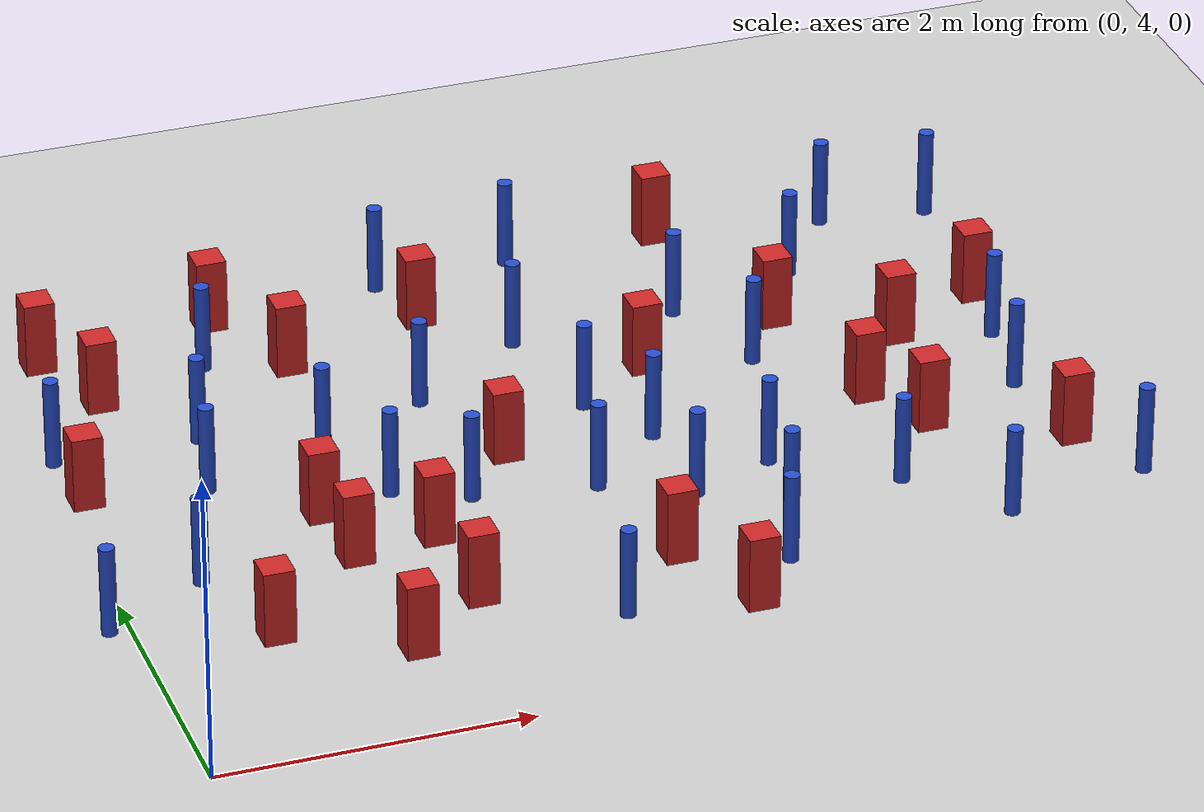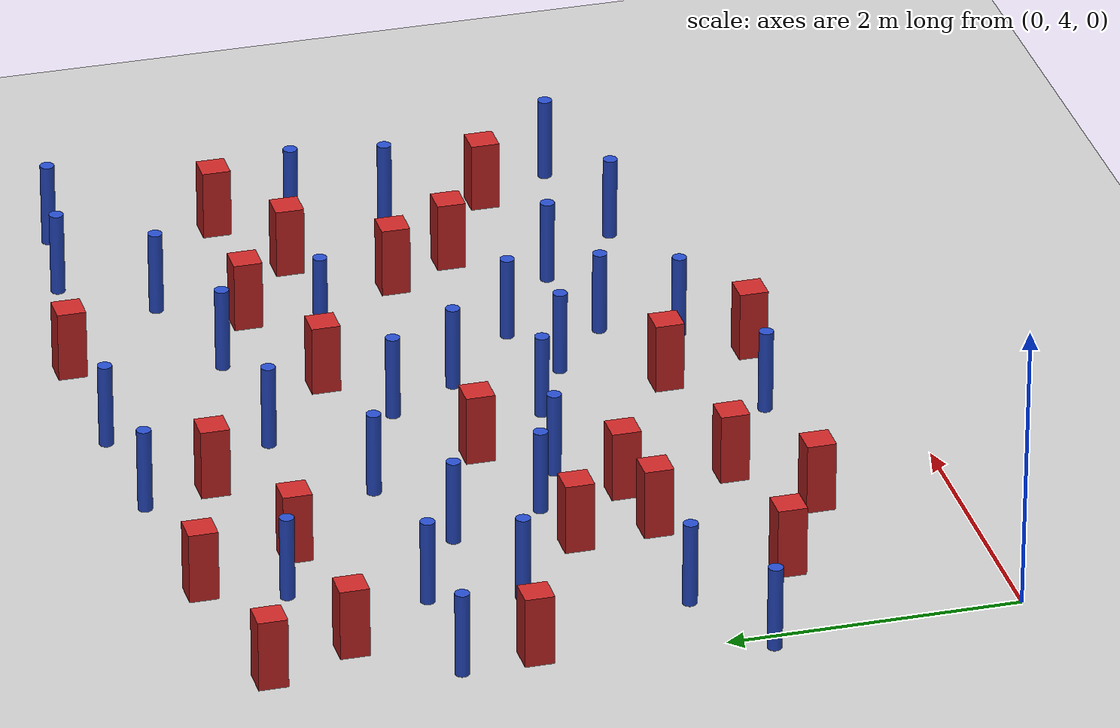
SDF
<sdf version="1.6">
 <world name="default">
  <model name="ground_plane">
   <static>1</static>
   <link name="link">
    <collision name="collision">
     <geometry><plane><normal>0 0 1</normal><size>100 100</size></plane></geometry>
     <surface><friction><ode><mu>100</mu><mu2>50</mu2></ode></friction></surface>
    </collision>
    <visual name="visual">
     <cast_shadows>0</cast_shadows>
     <geometry><plane><normal>0 0 1</normal><size>100 100</size></plane></geometry>
     <material>
      <ambient>1.0 1.0 1.0 1.0</ambient>
      <diffuse>0.8 0.8 0.8 1.0</diffuse>
      <specular>0.01 0.01 0.01 1.000000</specular>
     </material>
    </visual>
   </link>
  </model>
  <model name="pole_obstacle9">
   <static>true</static>
   <pose>6.43883494584 9.03935850446 7.38925637345e-09 -8.471706928e-08 1.24976765081e-08 -1.74513093015e-07</pose>
   <link name="link">
    <pose>0 0 0.3 0 -0 0</pose>
    <inertial>
     <mass>1</mass>
     <inertia><ixx>0.145833</ixx><ixy>0</ixy><ixz>0</ixz><iyy>0.145833</iyy><iyz>0</iyz><izz>0.125</izz></inertia>
    </inertial>
    <collision name="collision">
     <geometry><cylinder><radius>0.05</radius><length>.6</length></cylinder></geometry>
    </collision>
    <visual name="visual">
     <geometry><cylinder><radius>0.05</radius><length>.6</length></cylinder></geometry>
     <material>
      <script><name>Gazebo/Blue</name><uri>file://media/materials/scripts/gazebo.material</uri></script>
     </material>
    </visual>
   </link>
  </model>
  <model name="square_post_obstacle13">
   <static>true</static>
   <pose>0.308547579843 8.96091731637 1.91545236811e-07 -7.35059704564e-06 1.12565212e-07 2.39332434364e-05</pose>
   <link name="link">
    <pose>0 0 0.25 0 -0 0</pose>
    <inertial>
     <mass>100</mass>
     <inertia>
      <ixx>0.166667</ixx>
      <ixy>0</ixy>
      <ixz>0</ixz>
      <iyy>0.166667</iyy>
      <iyz>0</iyz>
      <izz>0.166667</izz>
     </inertia>
    </inertial>
    <collision name="collision"><geometry><box><size>.2 .2 .5</size></box></geometry></collision>
    <visual name="visual">
     <geometry><box><size>.2 .2 .5</size></box></geometry>
     <material>
      <script><name>Gazebo/Red</name><uri>file://media/materials/scripts/gazebo.material</uri></script>
     </material>
    </visual>
   </link>
  </model>
  <model name="pole_obstacle28">
   <static>true</static>
   <pose>1.01745465262 7.73019974511 7.38925637345e-09 -8.47170692799e-08 1.24976765021e-08 -1.74513093019e-07</pose>
   <link name="link">
    <pose>0 0 0.3 0 -0 0</pose>
    <inertial>
     <mass>1</mass>
     <inertia><ixx>0.145833</ixx><ixy>0</ixy><ixz>0</ixz><iyy>0.145833</iyy><iyz>0</iyz><izz>0.125</izz></inertia>
    </inertial>
    <collision name="collision">
     <geometry><cylinder><radius>0.05</radius><length>.6</length></cylinder></geometry>
    </collision>
    <visual name="visual">
     <geometry><cylinder><radius>0.05</radius><length>.6</length></cylinder></geometry>
     <material>
      <script><name>Gazebo/Blue</name><uri>file://media/materials/scripts/gazebo.material</uri></script>
     </material>
    </visual>
   </link>
  </model>
  <model name="pole_obstacle33">
   <static>true</static>
   <pose>4.38627192349 8.28959876995 7.38925637345e-09 -8.471706928e-08 1.24976765081e-08 -1.74513093015e-07</pose>
   <link name="link">
    <pose>0 0 0.3 0 -0 0</pose>
    <inertial>
     <mass>1</mass>
     <inertia><ixx>0.145833</ixx><ixy>0</ixy><ixz>0</ixz><iyy>0.145833</iyy><iyz>0</iyz><izz>0.125</izz></inertia>
    </inertial>
    <collision name="collision">
     <geometry><cylinder><radius>0.05</radius><length>.6</length></cylinder></geometry>
    </collision>
    <visual name="visual">
     <geometry><cylinder><radius>0.05</radius><length>.6</length></cylinder></geometry>
     <material>
      <script><name>Gazebo/Blue</name><uri>file://media/materials/scripts/gazebo.material</uri></script>
     </material>
    </visual>
   </link>
  </model>
  <model name="square_post_obstacle35">
   <static>true</static>
   <pose>3.38666781271 5.44627114641 1.91545236811e-07 -7.35059704564e-06 1.12565212e-07 2.39332434364e-05</pose>
   <link name="link">
    <pose>0 0 0.25 0 -0 0</pose>
    <inertial>
     <mass>100</mass>
     <inertia>
      <ixx>0.166667</ixx>
      <ixy>0</ixy>
      <ixz>0</ixz>
      <iyy>0.166667</iyy>
      <iyz>0</iyz>
      <izz>0.166667</izz>
     </inertia>
    </inertial>
    <collision name="collision"><geometry><box><size>.2 .2 .5</size></box></geometry></collision>
    <visual name="visual">
     <geometry><box><size>.2 .2 .5</size></box></geometry>
     <material>
      <script><name>Gazebo/Red</name><uri>file://media/materials/scripts/gazebo.material</uri></script>
     </material>
    </visual>
   </link>
  </model>
  <model name="pole_obstacle47">
   <static>true</static>
   <pose>-0.129529236448 5.71778781946 7.38925637345e-09 -8.47170692799e-08 1.24976765043e-08 -1.74513093019e-07</pose>
   <link name="link">
    <pose>0 0 0.3 0 -0 0</pose>
    <inertial>
     <mass>1</mass>
     <inertia><ixx>0.145833</ixx><ixy>0</ixy><ixz>0</ixz><iyy>0.145833</iyy><iyz>0</iyz><izz>0.125</izz></inertia>
    </inertial>
    <collision name="collision">
     <geometry><cylinder><radius>0.05</radius><length>.6</length></cylinder></geometry>
    </collision>
    <visual name="visual">
     <geometry><cylinder><radius>0.05</radius><length>.6</length></cylinder></geometry>
     <material>
      <script><name>Gazebo/Blue</name><uri>file://media/materials/scripts/gazebo.material</uri></script>
     </material>
    </visual>
   </link>
  </model>
  <model name="square_post_obstacle38">
   <static>true</static>
   <pose>1.8155594871 8.42395148105 1.91545236811e-07 -7.35059704564e-06 1.12565212e-07 2.39332434364e-05</pose>
   <link name="link">
    <pose>0 0 0.25 0 -0 0</pose>
    <inertial>
     <mass>100</mass>
     <inertia>
      <ixx>0.166667</ixx>
      <ixy>0</ixy>
      <ixz>0</ixz>
      <iyy>0.166667</iyy>
      <iyz>0</iyz>
      <izz>0.166667</izz>
     </inertia>
    </inertial>
    <collision name="collision"><geometry><box><size>.2 .2 .5</size></box></geometry></collision>
    <visual name="visual">
     <geometry><box><size>.2 .2 .5</size></box></geometry>
     <material>
      <script><name>Gazebo/Red</name><uri>file://media/materials/scripts/gazebo.material</uri></script>
     </material>
    </visual>
   </link>
  </model>
  <model name="pole_obstacle56">
   <static>true</static>
   <pose>3.44344472262 7.33857064177 7.38925637345e-09 -8.47170692798e-08 1.24976765033e-08 -1.74513093019e-07</pose>
   <link name="link">
    <pose>0 0 0.3 0 -0 0</pose>
    <inertial>
     <mass>1</mass>
     <inertia><ixx>0.145833</ixx><ixy>0</ixy><ixz>0</ixz><iyy>0.145833</iyy><iyz>0</iyz><izz>0.125</izz></inertia>
    </inertial>
    <collision name="collision">
     <geometry><cylinder><radius>0.05</radius><length>.6</length></cylinder></geometry>
    </collision>
    <visual name="visual">
     <geometry><cylinder><radius>0.05</radius><length>.6</length></cylinder></geometry>
     <material>
      <script><name>Gazebo/Blue</name><uri>file://media/materials/scripts/gazebo.material</uri></script>
     </material>
    </visual>
   </link>
  </model>
  <model name="pole_obstacle57">
   <static>true</static>
   <pose>3.27122801807 8.23968151039 7.38925637345e-09 -8.47170692793e-08 1.24976764408e-08 -1.74513093041e-07</pose>
   <link name="link">
    <pose>0 0 0.3 0 -0 0</pose>
    <inertial>
     <mass>1</mass>
     <inertia><ixx>0.145833</ixx><ixy>0</ixy><ixz>0</ixz><iyy>0.145833</iyy><iyz>0</iyz><izz>0.125</izz></inertia>
    </inertial>
    <collision name="collision">
     <geometry><cylinder><radius>0.05</radius><length>.6</length></cylinder></geometry>
    </collision>
    <visual name="visual">
     <geometry><cylinder><radius>0.05</radius><length>.6</length></cylinder></geometry>
     <material>
      <script><name>Gazebo/Blue</name><uri>file://media/materials/scripts/gazebo.material</uri></script>
     </material>
    </visual>
   </link>
  </model>
  <model name="pole_obstacle58">
   <static>true</static>
   <pose>3.57361111671 9.28716800198 7.38925637345e-09 -8.47170692793e-08 1.24976764408e-08 -1.74513093041e-07</pose>
   <link name="link">
    <pose>0 0 0.3 0 -0 0</pose>
    <inertial>
     <mass>1</mass>
     <inertia><ixx>0.145833</ixx><ixy>0</ixy><ixz>0</ixz><iyy>0.145833</iyy><iyz>0</iyz><izz>0.125</izz></inertia>
    </inertial>
    <collision name="collision">
     <geometry><cylinder><radius>0.05</radius><length>.6</length></cylinder></geometry>
    </collision>
    <visual name="visual">
     <geometry><cylinder><radius>0.05</radius><length>.6</length></cylinder></geometry>
     <material>
      <script><name>Gazebo/Blue</name><uri>file://media/materials/scripts/gazebo.material</uri></script>
     </material>
    </visual>
   </link>
  </model>
  <model name="pole_obstacle60">
   <static>true</static>
   <pose>2.66086202297 9.23289298458 7.38925637345e-09 -8.47170692793e-08 1.24976764408e-08 -1.74513093041e-07</pose>
   <link name="link">
    <pose>0 0 0.3 0 -0 0</pose>
    <inertial>
     <mass>1</mass>
     <inertia><ixx>0.145833</ixx><ixy>0</ixy><ixz>0</ixz><iyy>0.145833</iyy><iyz>0</iyz><izz>0.125</izz></inertia>
    </inertial>
    <collision name="collision">
     <geometry><cylinder><radius>0.05</radius><length>.6</length></cylinder></geometry>
    </collision>
    <visual name="visual">
     <geometry><cylinder><radius>0.05</radius><length>.6</length></cylinder></geometry>
     <material>
      <script><name>Gazebo/Blue</name><uri>file://media/materials/scripts/gazebo.material</uri></script>
     </material>
    </visual>
   </link>
  </model>
  <model name="square_post_obstacle48">
   <static>true</static>
   <pose>5.42436424604 6.43318882685 1.91545236811e-07 -7.35059704564e-06 1.12565212e-07 2.39332434364e-05</pose>
   <link name="link">
    <pose>0 0 0.25 0 -0 0</pose>
    <inertial>
     <mass>100</mass>
     <inertia>
      <ixx>0.166667</ixx>
      <ixy>0</ixy>
      <ixz>0</ixz>
      <iyy>0.166667</iyy>
      <iyz>0</iyz>
      <izz>0.166667</izz>
     </inertia>
    </inertial>
    <collision name="collision"><geometry><box><size>.2 .2 .5</size></box></geometry></collision>
    <visual name="visual">
     <geometry><box><size>.2 .2 .5</size></box></geometry>
     <material>
      <script><name>Gazebo/Red</name><uri>file://media/materials/scripts/gazebo.material</uri></script>
     </material>
    </visual>
   </link>
  </model>
  <model name="pole_obstacle66">
   <static>true</static>
   <pose>5.28277343739 8.54254350757 7.38925637345e-09 -8.471706928e-08 1.24976765081e-08 -1.74513093015e-07</pose>
   <link name="link">
    <pose>0 0 0.3 0 -0 0</pose>
    <inertial>
     <mass>1</mass>
     <inertia><ixx>0.145833</ixx><ixy>0</ixy><ixz>0</ixz><iyy>0.145833</iyy><iyz>0</iyz><izz>0.125</izz></inertia>
    </inertial>
    <collision name="collision">
     <geometry><cylinder><radius>0.05</radius><length>.6</length></cylinder></geometry>
    </collision>
    <visual name="visual">
     <geometry><cylinder><radius>0.05</radius><length>.6</length></cylinder></geometry>
     <material>
      <script><name>Gazebo/Blue</name><uri>file://media/materials/scripts/gazebo.material</uri></script>
     </material>
    </visual>
   </link>
  </model>
  <model name="pole_obstacle68">
   <static>true</static>
   <pose>6.48093558159 5.45163694313 7.38925637345e-09 -8.47170692796e-08 1.24976764786e-08 -1.74513093032e-07</pose>
   <link name="link">
    <pose>0 0 0.3 0 -0 0</pose>
    <inertial>
     <mass>1</mass>
     <inertia><ixx>0.145833</ixx><ixy>0</ixy><ixz>0</ixz><iyy>0.145833</iyy><iyz>0</iyz><izz>0.125</izz></inertia>
    </inertial>
    <collision name="collision">
     <geometry><cylinder><radius>0.05</radius><length>.6</length></cylinder></geometry>
    </collision>
    <visual name="visual">
     <geometry><cylinder><radius>0.05</radius><length>.6</length></cylinder></geometry>
     <material>
      <script><name>Gazebo/Blue</name><uri>file://media/materials/scripts/gazebo.material</uri></script>
     </material>
    </visual>
   </link>
  </model>
  <model name="pole_obstacle72">
   <static>true</static>
   <pose>1.95988558031 6.71472503706 7.38925637345e-09 -8.471706928e-08 1.24976765202e-08 -1.7451309301e-07</pose>
   <link name="link">
    <pose>0 0 0.3 0 -0 0</pose>
    <inertial>
     <mass>1</mass>
     <inertia><ixx>0.145833</ixx><ixy>0</ixy><ixz>0</ixz><iyy>0.145833</iyy><iyz>0</iyz><izz>0.125</izz></inertia>
    </inertial>
    <collision name="collision">
     <geometry><cylinder><radius>0.05</radius><length>.6</length></cylinder></geometry>
    </collision>
    <visual name="visual">
     <geometry><cylinder><radius>0.05</radius><length>.6</length></cylinder></geometry>
     <material>
      <script><name>Gazebo/Blue</name><uri>file://media/materials/scripts/gazebo.material</uri></script>
     </material>
    </visual>
   </link>
  </model>
  <model name="square_post_obstacle67">
   <static>true</static>
   <pose>1.46859394641 6.60679710805 1.91545236811e-07 -7.35059704564e-06 1.12565212e-07 2.39332434364e-05</pose>
   <link name="link">
    <pose>0 0 0.25 0 -0 0</pose>
    <inertial>
     <mass>100</mass>
     <inertia>
      <ixx>0.166667</ixx>
      <ixy>0</ixy>
      <ixz>0</ixz>
      <iyy>0.166667</iyy>
      <iyz>0</iyz>
      <izz>0.166667</izz>
     </inertia>
    </inertial>
    <collision name="collision"><geometry><box><size>.2 .2 .5</size></box></geometry></collision>
    <visual name="visual">
     <geometry><box><size>.2 .2 .5</size></box></geometry>
     <material>
      <script><name>Gazebo/Red</name><uri>file://media/materials/scripts/gazebo.material</uri></script>
     </material>
    </visual>
   </link>
  </model>
  <model name="square_post_obstacle69">
   <static>true</static>
   <pose>0.802651611613 5.35255156181 1.91545236811e-07 -7.35059704564e-06 1.12565212e-07 2.39332434364e-05</pose>
   <link name="link">
    <pose>0 0 0.25 0 -0 0</pose>
    <inertial>
     <mass>100</mass>
     <inertia>
      <ixx>0.166667</ixx>
      <ixy>0</ixy>
      <ixz>0</ixz>
      <iyy>0.166667</iyy>
      <iyz>0</iyz>
      <izz>0.166667</izz>
     </inertia>
    </inertial>
    <collision name="collision"><geometry><box><size>.2 .2 .5</size></box></geometry></collision>
    <visual name="visual">
     <geometry><box><size>.2 .2 .5</size></box></geometry>
     <material>
      <script><name>Gazebo/Red</name><uri>file://media/materials/scripts/gazebo.material</uri></script>
     </material>
    </visual>
   </link>
  </model>
  <model name="pole_obstacle81">
   <static>true</static>
   <pose>2.4189466482 6.49661407589 7.38925637345e-09 -8.47170692798e-08 1.24976765033e-08 -1.74513093019e-07</pose>
   <link name="link">
    <pose>0 0 0.3 0 -0 0</pose>
    <inertial>
     <mass>1</mass>
     <inertia><ixx>0.145833</ixx><ixy>0</ixy><ixz>0</ixz><iyy>0.145833</iyy><iyz>0</iyz><izz>0.125</izz></inertia>
    </inertial>
    <collision name="collision">
     <geometry><cylinder><radius>0.05</radius><length>.6</length></cylinder></geometry>
    </collision>
    <visual name="visual">
     <geometry><cylinder><radius>0.05</radius><length>.6</length></cylinder></geometry>
     <material>
      <script><name>Gazebo/Blue</name><uri>file://media/materials/scripts/gazebo.material</uri></script>
     </material>
    </visual>
   </link>
  </model>
  <model name="square_post_obstacle71">
   <static>true</static>
   <pose>1.56021606672 4.92759658298 1.91545236811e-07 -7.35059704564e-06 1.12565212e-07 2.39332434364e-05</pose>
   <link name="link">
    <pose>0 0 0.25 0 -0 0</pose>
    <inertial>
     <mass>100</mass>
     <inertia>
      <ixx>0.166667</ixx>
      <ixy>0</ixy>
      <ixz>0</ixz>
      <iyy>0.166667</iyy>
      <iyz>0</iyz>
      <izz>0.166667</izz>
     </inertia>
    </inertial>
    <collision name="collision"><geometry><box><size>.2 .2 .5</size></box></geometry></collision>
    <visual name="visual">
     <geometry><box><size>.2 .2 .5</size></box></geometry>
     <material>
      <script><name>Gazebo/Red</name><uri>file://media/materials/scripts/gazebo.material</uri></script>
     </material>
    </visual>
   </link>
  </model>
  <model name="pole_obstacle83">
   <static>true</static>
   <pose>1.30534997604 8.59849395168 7.38925637345e-09 -8.47170692798e-08 1.24976764881e-08 -1.74513093027e-07</pose>
   <link name="link">
    <pose>0 0 0.3 0 -0 0</pose>
    <inertial>
     <mass>1</mass>
     <inertia><ixx>0.145833</ixx><ixy>0</ixy><ixz>0</ixz><iyy>0.145833</iyy><iyz>0</iyz><izz>0.125</izz></inertia>
    </inertial>
    <collision name="collision">
     <geometry><cylinder><radius>0.05</radius><length>.6</length></cylinder></geometry>
    </collision>
    <visual name="visual">
     <geometry><cylinder><radius>0.05</radius><length>.6</length></cylinder></geometry>
     <material>
      <script><name>Gazebo/Blue</name><uri>file://media/materials/scripts/gazebo.material</uri></script>
     </material>
    </visual>
   </link>
  </model>
  <model name="pole_obstacle86">
   <static>true</static>
   <pose>4.65745340407 7.53725400249 7.38925637345e-09 -8.47170692796e-08 1.24976764786e-08 -1.74513093032e-07</pose>
   <link name="link">
    <pose>0 0 0.3 0 -0 0</pose>
    <inertial>
     <mass>1</mass>
     <inertia><ixx>0.145833</ixx><ixy>0</ixy><ixz>0</ixz><iyy>0.145833</iyy><iyz>0</iyz><izz>0.125</izz></inertia>
    </inertial>
    <collision name="collision">
     <geometry><cylinder><radius>0.05</radius><length>.6</length></cylinder></geometry>
    </collision>
    <visual name="visual">
     <geometry><cylinder><radius>0.05</radius><length>.6</length></cylinder></geometry>
     <material>
      <script><name>Gazebo/Blue</name><uri>file://media/materials/scripts/gazebo.material</uri></script>
     </material>
    </visual>
   </link>
  </model>
  <model name="square_post_obstacle79">
   <static>true</static>
   <pose>3.6672656424 4.77400452804 1.91545236811e-07 -7.35059704564e-06 1.12565212e-07 2.39332434364e-05</pose>
   <link name="link">
    <pose>0 0 0.25 0 -0 0</pose>
    <inertial>
     <mass>100</mass>
     <inertia>
      <ixx>0.166667</ixx>
      <ixy>0</ixy>
      <ixz>0</ixz>
      <iyy>0.166667</iyy>
      <iyz>0</iyz>
      <izz>0.166667</izz>
     </inertia>
    </inertial>
    <collision name="collision"><geometry><box><size>.2 .2 .5</size></box></geometry></collision>
    <visual name="visual">
     <geometry><box><size>.2 .2 .5</size></box></geometry>
     <material>
      <script><name>Gazebo/Red</name><uri>file://media/materials/scripts/gazebo.material</uri></script>
     </material>
    </visual>
   </link>
  </model>
  <model name="pole_obstacle97">
   <static>true</static>
   <pose>0.0795535159686 7.74541924346 7.38925637345e-09 -8.47170692799e-08 1.24976765062e-08 -1.74513093018e-07</pose>
   <link name="link">
    <pose>0 0 0.3 0 -0 0</pose>
    <inertial>
     <mass>1</mass>
     <inertia><ixx>0.145833</ixx><ixy>0</ixy><ixz>0</ixz><iyy>0.145833</iyy><iyz>0</iyz><izz>0.125</izz></inertia>
    </inertial>
    <collision name="collision">
     <geometry><cylinder><radius>0.05</radius><length>.6</length></cylinder></geometry>
    </collision>
    <visual name="visual">
     <geometry><cylinder><radius>0.05</radius><length>.6</length></cylinder></geometry>
     <material>
      <script><name>Gazebo/Blue</name><uri>file://media/materials/scripts/gazebo.material</uri></script>
     </material>
    </visual>
   </link>
  </model>
  <model name="pole_obstacle110">
   <static>true</static>
   <pose>2.47433631225 7.71870514691 7.38925637345e-09 -8.47170692798e-08 1.24976765033e-08 -1.74513093019e-07</pose>
   <link name="link">
    <pose>0 0 0.3 0 -0 0</pose>
    <inertial>
     <mass>1</mass>
     <inertia><ixx>0.145833</ixx><ixy>0</ixy><ixz>0</ixz><iyy>0.145833</iyy><iyz>0</iyz><izz>0.125</izz></inertia>
    </inertial>
    <collision name="collision">
     <geometry><cylinder><radius>0.05</radius><length>.6</length></cylinder></geometry>
    </collision>
    <visual name="visual">
     <geometry><cylinder><radius>0.05</radius><length>.6</length></cylinder></geometry>
     <material>
      <script><name>Gazebo/Blue</name><uri>file://media/materials/scripts/gazebo.material</uri></script>
     </material>
    </visual>
   </link>
  </model>
  <model name="pole_obstacle118">
   <static>true</static>
   <pose>5.72731945205 9.1341911314 7.38925637345e-09 -8.471706928e-08 1.24976765081e-08 -1.74513093015e-07</pose>
   <link name="link">
    <pose>0 0 0.3 0 -0 0</pose>
    <inertial>
     <mass>1</mass>
     <inertia><ixx>0.145833</ixx><ixy>0</ixy><ixz>0</ixz><iyy>0.145833</iyy><iyz>0</iyz><izz>0.125</izz></inertia>
    </inertial>
    <collision name="collision">
     <geometry><cylinder><radius>0.05</radius><length>.6</length></cylinder></geometry>
    </collision>
    <visual name="visual">
     <geometry><cylinder><radius>0.05</radius><length>.6</length></cylinder></geometry>
     <material>
      <script><name>Gazebo/Blue</name><uri>file://media/materials/scripts/gazebo.material</uri></script>
     </material>
    </visual>
   </link>
  </model>
  <model name="square_post_obstacle120">
   <static>true</static>
   <pose>2.78614215095 8.74407531196 1.91545236811e-07 -7.35059704564e-06 1.12565212e-07 2.39332434364e-05</pose>
   <link name="link">
    <pose>0 0 0.25 0 -0 0</pose>
    <inertial>
     <mass>100</mass>
     <inertia>
      <ixx>0.166667</ixx>
      <ixy>0</ixy>
      <ixz>0</ixz>
      <iyy>0.166667</iyy>
      <iyz>0</iyz>
      <izz>0.166667</izz>
     </inertia>
    </inertial>
    <collision name="collision"><geometry><box><size>.2 .2 .5</size></box></geometry></collision>
    <visual name="visual">
     <geometry><box><size>.2 .2 .5</size></box></geometry>
     <material>
      <script><name>Gazebo/Red</name><uri>file://media/materials/scripts/gazebo.material</uri></script>
     </material>
    </visual>
   </link>
  </model>
  <model name="pole_obstacle119">
   <static>true</static>
   <pose>1.7253643911 7.36992155974 7.38925637345e-09 -8.47170692799e-08 1.24976765033e-08 -1.74513093018e-07</pose>
   <link name="link">
    <pose>0 0 0.3 0 -0 0</pose>
    <inertial>
     <mass>1</mass>
     <inertia><ixx>0.145833</ixx><ixy>0</ixy><ixz>0</ixz><iyy>0.145833</iyy><iyz>0</iyz><izz>0.125</izz></inertia>
    </inertial>
    <collision name="collision">
     <geometry><cylinder><radius>0.05</radius><length>.6</length></cylinder></geometry>
    </collision>
    <visual name="visual">
     <geometry><cylinder><radius>0.05</radius><length>.6</length></cylinder></geometry>
     <material>
      <script><name>Gazebo/Blue</name><uri>file://media/materials/scripts/gazebo.material</uri></script>
     </material>
    </visual>
   </link>
  </model>
  <model name="square_post_obstacle122">
   <static>true</static>
   <pose>0.548187543537 8.36126639216 1.91545236811e-07 -7.35059704564e-06 1.12565212e-07 2.39332434364e-05</pose>
   <link name="link">
    <pose>0 0 0.25 0 -0 0</pose>
    <inertial>
     <mass>100</mass>
     <inertia>
      <ixx>0.166667</ixx>
      <ixy>0</ixy>
      <ixz>0</ixz>
      <iyy>0.166667</iyy>
      <iyz>0</iyz>
      <izz>0.166667</izz>
     </inertia>
    </inertial>
    <collision name="collision"><geometry><box><size>.2 .2 .5</size></box></geometry></collision>
    <visual name="visual">
     <geometry><box><size>.2 .2 .5</size></box></geometry>
     <material>
      <script><name>Gazebo/Red</name><uri>file://media/materials/scripts/gazebo.material</uri></script>
     </material>
    </visual>
   </link>
  </model>
  <model name="square_post_obstacle126">
   <static>true</static>
   <pose>4.95816907874 7.99166861018 1.91545236811e-07 -7.35059704564e-06 1.12565212e-07 2.39332434364e-05</pose>
   <link name="link">
    <pose>0 0 0.25 0 -0 0</pose>
    <inertial>
     <mass>100</mass>
     <inertia>
      <ixx>0.166667</ixx>
      <ixy>0</ixy>
      <ixz>0</ixz>
      <iyy>0.166667</iyy>
      <iyz>0</iyz>
      <izz>0.166667</izz>
     </inertia>
    </inertial>
    <collision name="collision"><geometry><box><size>.2 .2 .5</size></box></geometry></collision>
    <visual name="visual">
     <geometry><box><size>.2 .2 .5</size></box></geometry>
     <material>
      <script><name>Gazebo/Red</name><uri>file://media/materials/scripts/gazebo.material</uri></script>
     </material>
    </visual>
   </link>
  </model>
  <model name="square_post_obstacle130">
   <static>true</static>
   <pose>6.30701076481 7.88849110511 1.91545236811e-07 -7.35059704564e-06 1.12565212e-07 2.39332434364e-05</pose>
   <link name="link">
    <pose>0 0 0.25 0 -0 0</pose>
    <inertial>
     <mass>100</mass>
     <inertia>
      <ixx>0.166667</ixx>
      <ixy>0</ixy>
      <ixz>0</ixz>
      <iyy>0.166667</iyy>
      <iyz>0</iyz>
      <izz>0.166667</izz>
     </inertia>
    </inertial>
    <collision name="collision"><geometry><box><size>.2 .2 .5</size></box></geometry></collision>
    <visual name="visual">
     <geometry><box><size>.2 .2 .5</size></box></geometry>
     <material>
      <script><name>Gazebo/Red</name><uri>file://media/materials/scripts/gazebo.material</uri></script>
     </material>
    </visual>
   </link>
  </model>
  <model name="pole_obstacle133">
   <static>true</static>
   <pose>0.551315568277 6.09092202188 7.38925637345e-09 -8.471706928e-08 1.24976765086e-08 -1.74513093015e-07</pose>
   <link name="link">
    <pose>0 0 0.3 0 -0 0</pose>
    <inertial>
     <mass>1</mass>
     <inertia><ixx>0.145833</ixx><ixy>0</ixy><ixz>0</ixz><iyy>0.145833</iyy><iyz>0</iyz><izz>0.125</izz></inertia>
    </inertial>
    <collision name="collision">
     <geometry><cylinder><radius>0.05</radius><length>.6</length></cylinder></geometry>
    </collision>
    <visual name="visual">
     <geometry><cylinder><radius>0.05</radius><length>.6</length></cylinder></geometry>
     <material>
      <script><name>Gazebo/Blue</name><uri>file://media/materials/scripts/gazebo.material</uri></script>
     </material>
    </visual>
   </link>
  </model>
  <model name="pole_obstacle134">
   <static>true</static>
   <pose>4.02419805024 5.17238212434 7.38925637345e-09 -8.47170692796e-08 1.24976764793e-08 -1.74513093032e-07</pose>
   <link name="link">
    <pose>0 0 0.3 0 -0 0</pose>
    <inertial>
     <mass>1</mass>
     <inertia><ixx>0.145833</ixx><ixy>0</ixy><ixz>0</ixz><iyy>0.145833</iyy><iyz>0</iyz><izz>0.125</izz></inertia>
    </inertial>
    <collision name="collision">
     <geometry><cylinder><radius>0.05</radius><length>.6</length></cylinder></geometry>
    </collision>
    <visual name="visual">
     <geometry><cylinder><radius>0.05</radius><length>.6</length></cylinder></geometry>
     <material>
      <script><name>Gazebo/Blue</name><uri>file://media/materials/scripts/gazebo.material</uri></script>
     </material>
    </visual>
   </link>
  </model>
  <model name="square_post_obstacle133">
   <static>true</static>
   <pose>5.63150810978 7.53114104285 1.91545236811e-07 -7.35059704564e-06 1.12565212e-07 2.39332434364e-05</pose>
   <link name="link">
    <pose>0 0 0.25 0 -0 0</pose>
    <inertial>
     <mass>100</mass>
     <inertia>
      <ixx>0.166667</ixx>
      <ixy>0</ixy>
      <ixz>0</ixz>
      <iyy>0.166667</iyy>
      <iyz>0</iyz>
      <izz>0.166667</izz>
     </inertia>
    </inertial>
    <collision name="collision"><geometry><box><size>.2 .2 .5</size></box></geometry></collision>
    <visual name="visual">
     <geometry><box><size>.2 .2 .5</size></box></geometry>
     <material>
      <script><name>Gazebo/Red</name><uri>file://media/materials/scripts/gazebo.material</uri></script>
     </material>
    </visual>
   </link>
  </model>
  <model name="pole_obstacle138">
   <static>true</static>
   <pose>5.51394114738 5.245447822 7.38925637345e-09 -8.47170692796e-08 1.24976764786e-08 -1.74513093032e-07</pose>
   <link name="link">
    <pose>0 0 0.3 0 -0 0</pose>
    <inertial>
     <mass>1</mass>
     <inertia><ixx>0.145833</ixx><ixy>0</ixy><ixz>0</ixz><iyy>0.145833</iyy><iyz>0</iyz><izz>0.125</izz></inertia>
    </inertial>
    <collision name="collision">
     <geometry><cylinder><radius>0.05</radius><length>.6</length></cylinder></geometry>
    </collision>
    <visual name="visual">
     <geometry><cylinder><radius>0.05</radius><length>.6</length></cylinder></geometry>
     <material>
      <script><name>Gazebo/Blue</name><uri>file://media/materials/scripts/gazebo.material</uri></script>
     </material>
    </visual>
   </link>
  </model>
  <model name="pole_obstacle144">
   <static>true</static>
   <pose>5.01280908481 5.83331621269 7.38925637345e-09 -8.47170692796e-08 1.24976764786e-08 -1.74513093032e-07</pose>
   <link name="link">
    <pose>0 0 0.3 0 -0 0</pose>
    <inertial>
     <mass>1</mass>
     <inertia><ixx>0.145833</ixx><ixy>0</ixy><ixz>0</ixz><iyy>0.145833</iyy><iyz>0</iyz><izz>0.125</izz></inertia>
    </inertial>
    <collision name="collision">
     <geometry><cylinder><radius>0.05</radius><length>.6</length></cylinder></geometry>
    </collision>
    <visual name="visual">
     <geometry><cylinder><radius>0.05</radius><length>.6</length></cylinder></geometry>
     <material>
      <script><name>Gazebo/Blue</name><uri>file://media/materials/scripts/gazebo.material</uri></script>
     </material>
    </visual>
   </link>
  </model>
  <model name="pole_obstacle148">
   <static>true</static>
   <pose>0.898290636637 7.12077196246 7.38925637345e-09 -8.471706928e-08 1.24976765086e-08 -1.74513093015e-07</pose>
   <link name="link">
    <pose>0 0 0.3 0 -0 0</pose>
    <inertial>
     <mass>1</mass>
     <inertia><ixx>0.145833</ixx><ixy>0</ixy><ixz>0</ixz><iyy>0.145833</iyy><iyz>0</iyz><izz>0.125</izz></inertia>
    </inertial>
    <collision name="collision">
     <geometry><cylinder><radius>0.05</radius><length>.6</length></cylinder></geometry>
    </collision>
    <visual name="visual">
     <geometry><cylinder><radius>0.05</radius><length>.6</length></cylinder></geometry>
     <material>
      <script><name>Gazebo/Blue</name><uri>file://media/materials/scripts/gazebo.material</uri></script>
     </material>
    </visual>
   </link>
  </model>
  <model name="square_post_obstacle142">
   <static>true</static>
   <pose>1.49792317727 9.13254991693 1.91545236811e-07 -7.35059704564e-06 1.12565212e-07 2.39332434364e-05</pose>
   <link name="link">
    <pose>0 0 0.25 0 -0 0</pose>
    <inertial>
     <mass>100</mass>
     <inertia>
      <ixx>0.166667</ixx>
      <ixy>0</ixy>
      <ixz>0</ixz>
      <iyy>0.166667</iyy>
      <iyz>0</iyz>
      <izz>0.166667</izz>
     </inertia>
    </inertial>
    <collision name="collision"><geometry><box><size>.2 .2 .5</size></box></geometry></collision>
    <visual name="visual">
     <geometry><box><size>.2 .2 .5</size></box></geometry>
     <material>
      <script><name>Gazebo/Red</name><uri>file://media/materials/scripts/gazebo.material</uri></script>
     </material>
    </visual>
   </link>
  </model>
  <model name="square_post_obstacle149">
   <static>true</static>
   <pose>6.21278077012 5.98247236528 1.91545236811e-07 -7.35059704564e-06 1.12565212e-07 2.39332434364e-05</pose>
   <link name="link">
    <pose>0 0 0.25 0 -0 0</pose>
    <inertial>
     <mass>100</mass>
     <inertia>
      <ixx>0.166667</ixx>
      <ixy>0</ixy>
      <ixz>0</ixz>
      <iyy>0.166667</iyy>
      <iyz>0</iyz>
      <izz>0.166667</izz>
     </inertia>
    </inertial>
    <collision name="collision"><geometry><box><size>.2 .2 .5</size></box></geometry></collision>
    <visual name="visual">
     <geometry><box><size>.2 .2 .5</size></box></geometry>
     <material>
      <script><name>Gazebo/Red</name><uri>file://media/materials/scripts/gazebo.material</uri></script>
     </material>
    </visual>
   </link>
  </model>
  <model name="square_post_obstacle151">
   <static>true</static>
   <pose>2.77214558804 6.93243838983 1.91545236811e-07 -7.35059704564e-06 1.12565212e-07 2.39332434364e-05</pose>
   <link name="link">
    <pose>0 0 0.25 0 -0 0</pose>
    <inertial>
     <mass>100</mass>
     <inertia>
      <ixx>0.166667</ixx>
      <ixy>0</ixy>
      <ixz>0</ixz>
      <iyy>0.166667</iyy>
      <iyz>0</iyz>
      <izz>0.166667</izz>
     </inertia>
    </inertial>
    <collision name="collision"><geometry><box><size>.2 .2 .5</size></box></geometry></collision>
    <visual name="visual">
     <geometry><box><size>.2 .2 .5</size></box></geometry>
     <material>
      <script><name>Gazebo/Red</name><uri>file://media/materials/scripts/gazebo.material</uri></script>
     </material>
    </visual>
   </link>
  </model>
  <model name="square_post_obstacle152">
   <static>true</static>
   <pose>5.17497685672 6.89419982875 1.91545236811e-07 -7.35059704564e-06 1.12565212e-07 2.39332434364e-05</pose>
   <link name="link">
    <pose>0 0 0.25 0 -0 0</pose>
    <inertial>
     <mass>100</mass>
     <inertia>
      <ixx>0.166667</ixx>
      <ixy>0</ixy>
      <ixz>0</ixz>
      <iyy>0.166667</iyy>
      <iyz>0</iyz>
      <izz>0.166667</izz>
     </inertia>
    </inertial>
    <collision name="collision"><geometry><box><size>.2 .2 .5</size></box></geometry></collision>
    <visual name="visual">
     <geometry><box><size>.2 .2 .5</size></box></geometry>
     <material>
      <script><name>Gazebo/Red</name><uri>file://media/materials/scripts/gazebo.material</uri></script>
     </material>
    </visual>
   </link>
  </model>
  <model name="pole_obstacle158">
   <static>true</static>
   <pose>3.19983254448 6.36667808694 7.38925637345e-09 -8.47170692798e-08 1.24976765033e-08 -1.74513093019e-07</pose>
   <link name="link">
    <pose>0 0 0.3 0 -0 0</pose>
    <inertial>
     <mass>1</mass>
     <inertia><ixx>0.145833</ixx><ixy>0</ixy><ixz>0</ixz><iyy>0.145833</iyy><iyz>0</iyz><izz>0.125</izz></inertia>
    </inertial>
    <collision name="collision">
     <geometry><cylinder><radius>0.05</radius><length>.6</length></cylinder></geometry>
    </collision>
    <visual name="visual">
     <geometry><cylinder><radius>0.05</radius><length>.6</length></cylinder></geometry>
     <material>
      <script><name>Gazebo/Blue</name><uri>file://media/materials/scripts/gazebo.material</uri></script>
     </material>
    </visual>
   </link>
  </model>
  <model name="pole_obstacle163">
   <static>true</static>
   <pose>2.87473282468 4.89448850796 7.38925637345e-09 -8.47170692798e-08 1.24976765033e-08 -1.74513093019e-07</pose>
   <link name="link">
    <pose>0 0 0.3 0 -0 0</pose>
    <inertial>
     <mass>1</mass>
     <inertia><ixx>0.145833</ixx><ixy>0</ixy><ixz>0</ixz><iyy>0.145833</iyy><iyz>0</iyz><izz>0.125</izz></inertia>
    </inertial>
    <collision name="collision">
     <geometry><cylinder><radius>0.05</radius><length>.6</length></cylinder></geometry>
    </collision>
    <visual name="visual">
     <geometry><cylinder><radius>0.05</radius><length>.6</length></cylinder></geometry>
     <material>
      <script><name>Gazebo/Blue</name><uri>file://media/materials/scripts/gazebo.material</uri></script>
     </material>
    </visual>
   </link>
  </model>
  <model name="pole_obstacle169">
   <static>true</static>
   <pose>6.23747754869 7.35374544587 7.38925637345e-09 -8.47170692796e-08 1.24976764786e-08 -1.74513093032e-07</pose>
   <link name="link">
    <pose>0 0 0.3 0 -0 0</pose>
    <inertial>
     <mass>1</mass>
     <inertia><ixx>0.145833</ixx><ixy>0</ixy><ixz>0</ixz><iyy>0.145833</iyy><iyz>0</iyz><izz>0.125</izz></inertia>
    </inertial>
    <collision name="collision">
     <geometry><cylinder><radius>0.05</radius><length>.6</length></cylinder></geometry>
    </collision>
    <visual name="visual">
     <geometry><cylinder><radius>0.05</radius><length>.6</length></cylinder></geometry>
     <material>
      <script><name>Gazebo/Blue</name><uri>file://media/materials/scripts/gazebo.material</uri></script>
     </material>
    </visual>
   </link>
  </model>
  <model name="pole_obstacle173">
   <static>true</static>
   <pose>3.73084090703 6.8459269954 7.38925637345e-09 -8.47170692798e-08 1.24976765033e-08 -1.74513093019e-07</pose>
   <link name="link">
    <pose>0 0 0.3 0 -0 0</pose>
    <inertial>
     <mass>1</mass>
     <inertia><ixx>0.145833</ixx><ixy>0</ixy><ixz>0</ixz><iyy>0.145833</iyy><iyz>0</iyz><izz>0.125</izz></inertia>
    </inertial>
    <collision name="collision">
     <geometry><cylinder><radius>0.05</radius><length>.6</length></cylinder></geometry>
    </collision>
    <visual name="visual">
     <geometry><cylinder><radius>0.05</radius><length>.6</length></cylinder></geometry>
     <material>
      <script><name>Gazebo/Blue</name><uri>file://media/materials/scripts/gazebo.material</uri></script>
     </material>
    </visual>
   </link>
  </model>
  <model name="square_post_obstacle176">
   <static>true</static>
   <pose>1.5181174115 6.0528051802 1.91545236811e-07 -7.35059704564e-06 1.12565212e-07 2.39332434364e-05</pose>
   <link name="link">
    <pose>0 0 0.25 0 -0 0</pose>
    <inertial>
     <mass>100</mass>
     <inertia>
      <ixx>0.166667</ixx>
      <ixy>0</ixy>
      <ixz>0</ixz>
      <iyy>0.166667</iyy>
      <iyz>0</iyz>
      <izz>0.166667</izz>
     </inertia>
    </inertial>
    <collision name="collision"><geometry><box><size>.2 .2 .5</size></box></geometry></collision>
    <visual name="visual">
     <geometry><box><size>.2 .2 .5</size></box></geometry>
     <material>
      <script><name>Gazebo/Red</name><uri>file://media/materials/scripts/gazebo.material</uri></script>
     </material>
    </visual>
   </link>
  </model>
  <model name="square_post_obstacle190">
   <static>true</static>
   <pose>3.96151477651 7.69458173499 1.91545236811e-07 -7.35059704564e-06 1.12565212e-07 2.39332434364e-05</pose>
   <link name="link">
    <pose>0 0 0.25 0 -0 0</pose>
    <inertial>
     <mass>100</mass>
     <inertia>
      <ixx>0.166667</ixx>
      <ixy>0</ixy>
      <ixz>0</ixz>
      <iyy>0.166667</iyy>
      <iyz>0</iyz>
      <izz>0.166667</izz>
     </inertia>
    </inertial>
    <collision name="collision"><geometry><box><size>.2 .2 .5</size></box></geometry></collision>
    <visual name="visual">
     <geometry><box><size>.2 .2 .5</size></box></geometry>
     <material>
      <script><name>Gazebo/Red</name><uri>file://media/materials/scripts/gazebo.material</uri></script>
     </material>
    </visual>
   </link>
  </model>
  <model name="square_post_obstacle191">
   <static>true</static>
   <pose>4.5968093013 9.30626113608 1.91545236811e-07 -7.35059704564e-06 1.12565212e-07 2.39332434364e-05</pose>
   <link name="link">
    <pose>0 0 0.25 0 -0 0</pose>
    <inertial>
     <mass>100</mass>
     <inertia>
      <ixx>0.166667</ixx>
      <ixy>0</ixy>
      <ixz>0</ixz>
      <iyy>0.166667</iyy>
      <iyz>0</iyz>
      <izz>0.166667</izz>
     </inertia>
    </inertial>
    <collision name="collision"><geometry><box><size>.2 .2 .5</size></box></geometry></collision>
    <visual name="visual">
     <geometry><box><size>.2 .2 .5</size></box></geometry>
     <material>
      <script><name>Gazebo/Red</name><uri>file://media/materials/scripts/gazebo.material</uri></script>
     </material>
    </visual>
   </link>
  </model>
  <model name="pole_obstacle187">
   <static>true</static>
   <pose>4.3066374825 6.31044808196 7.38925637345e-09 -8.47170692796e-08 1.24976764786e-08 -1.74513093032e-07</pose>
   <link name="link">
    <pose>0 0 0.3 0 -0 0</pose>
    <inertial>
     <mass>1</mass>
     <inertia><ixx>0.145833</ixx><ixy>0</ixy><ixz>0</ixz><iyy>0.145833</iyy><iyz>0</iyz><izz>0.125</izz></inertia>
    </inertial>
    <collision name="collision">
     <geometry><cylinder><radius>0.05</radius><length>.6</length></cylinder></geometry>
    </collision>
    <visual name="visual">
     <geometry><cylinder><radius>0.05</radius><length>.6</length></cylinder></geometry>
     <material>
      <script><name>Gazebo/Blue</name><uri>file://media/materials/scripts/gazebo.material</uri></script>
     </material>
    </visual>
   </link>
  </model>
  <model name="square_post_obstacle202">
   <static>true</static>
   <pose>0.144847649206 7.23875855276 1.91545236811e-07 -7.35059704564e-06 1.12565212e-07 2.39332434364e-05</pose>
   <link name="link">
    <pose>0 0 0.25 0 -0 0</pose>
    <inertial>
     <mass>100</mass>
     <inertia>
      <ixx>0.166667</ixx>
      <ixy>0</ixy>
      <ixz>0</ixz>
      <iyy>0.166667</iyy>
      <iyz>0</iyz>
      <izz>0.166667</izz>
     </inertia>
    </inertial>
    <collision name="collision"><geometry><box><size>.2 .2 .5</size></box></geometry></collision>
    <visual name="visual">
     <geometry><box><size>.2 .2 .5</size></box></geometry>
     <material>
      <script><name>Gazebo/Red</name><uri>file://media/materials/scripts/gazebo.material</uri></script>
     </material>
    </visual>
   </link>
  </model>
  <model name="square_post_obstacle206">
   <static>true</static>
   <pose>2.05449052671 6.124274359 1.91545236811e-07 -7.35059704564e-06 1.12565212e-07 2.39332434364e-05</pose>
   <link name="link">
    <pose>0 0 0.25 0 -0 0</pose>
    <inertial>
     <mass>100</mass>
     <inertia>
      <ixx>0.166667</ixx>
      <ixy>0</ixy>
      <ixz>0</ixz>
      <iyy>0.166667</iyy>
      <iyz>0</iyz>
      <izz>0.166667</izz>
     </inertia>
    </inertial>
    <collision name="collision"><geometry><box><size>.2 .2 .5</size></box></geometry></collision>
    <visual name="visual">
     <geometry><box><size>.2 .2 .5</size></box></geometry>
     <material>
      <script><name>Gazebo/Red</name><uri>file://media/materials/scripts/gazebo.material</uri></script>
     </material>
    </visual>
   </link>
  </model>
  <model name="pole_obstacle198">
   <static>true</static>
   <pose>3.74873771182 6.09008869645 7.38925637345e-09 -8.47170692798e-08 1.24976765033e-08 -1.74513093019e-07</pose>
   <link name="link">
    <pose>0 0 0.3 0 -0 0</pose>
    <inertial>
     <mass>1</mass>
     <inertia><ixx>0.145833</ixx><ixy>0</ixy><ixz>0</ixz><iyy>0.145833</iyy><iyz>0</iyz><izz>0.125</izz></inertia>
    </inertial>
    <collision name="collision">
     <geometry><cylinder><radius>0.05</radius><length>.6</length></cylinder></geometry>
    </collision>
    <visual name="visual">
     <geometry><cylinder><radius>0.05</radius><length>.6</length></cylinder></geometry>
     <material>
      <script><name>Gazebo/Blue</name><uri>file://media/materials/scripts/gazebo.material</uri></script>
     </material>
    </visual>
   </link>
  </model>
  <model name="pole_obstacle203">
   <static>true</static>
   <pose>4.21772967269 5.68137094656 7.38925637345e-09 -8.47170692796e-08 1.24976764786e-08 -1.74513093032e-07</pose>
   <link name="link">
    <pose>0 0 0.3 0 -0 0</pose>
    <inertial>
     <mass>1</mass>
     <inertia><ixx>0.145833</ixx><ixy>0</ixy><ixz>0</ixz><iyy>0.145833</iyy><iyz>0</iyz><izz>0.125</izz></inertia>
    </inertial>
    <collision name="collision">
     <geometry><cylinder><radius>0.05</radius><length>.6</length></cylinder></geometry>
    </collision>
    <visual name="visual">
     <geometry><cylinder><radius>0.05</radius><length>.6</length></cylinder></geometry>
     <material>
      <script><name>Gazebo/Blue</name><uri>file://media/materials/scripts/gazebo.material</uri></script>
     </material>
    </visual>
   </link>
  </model>
  <model name="pole_obstacle207">
   <static>true</static>
   <pose>6.12762650477 6.70746868133 7.38925637345e-09 -8.47170692796e-08 1.24976764786e-08 -1.74513093032e-07</pose>
   <link name="link">
    <pose>0 0 0.3 0 -0 0</pose>
    <inertial>
     <mass>1</mass>
     <inertia><ixx>0.145833</ixx><ixy>0</ixy><ixz>0</ixz><iyy>0.145833</iyy><iyz>0</iyz><izz>0.125</izz></inertia>
    </inertial>
    <collision name="collision">
     <geometry><cylinder><radius>0.05</radius><length>.6</length></cylinder></geometry>
    </collision>
    <visual name="visual">
     <geometry><cylinder><radius>0.05</radius><length>.6</length></cylinder></geometry>
     <material>
      <script><name>Gazebo/Blue</name><uri>file://media/materials/scripts/gazebo.material</uri></script>
     </material>
    </visual>
   </link>
  </model>
  <model name="square_post_obstacle212">
   <static>true</static>
   <pose>2.08753301278 5.36656580902 1.91545236811e-07 -7.35059704564e-06 1.12565212e-07 2.39332434364e-05</pose>
   <link name="link">
    <pose>0 0 0.25 0 -0 0</pose>
    <inertial>
     <mass>100</mass>
     <inertia>
      <ixx>0.166667</ixx>
      <ixy>0</ixy>
      <ixz>0</ixz>
      <iyy>0.166667</iyy>
      <iyz>0</iyz>
      <izz>0.166667</izz>
     </inertia>
    </inertial>
    <collision name="collision"><geometry><box><size>.2 .2 .5</size></box></geometry></collision>
    <visual name="visual">
     <geometry><box><size>.2 .2 .5</size></box></geometry>
     <material>
      <script><name>Gazebo/Red</name><uri>file://media/materials/scripts/gazebo.material</uri></script>
     </material>
    </visual>
   </link>
  </model>
 </world>
</sdf>
